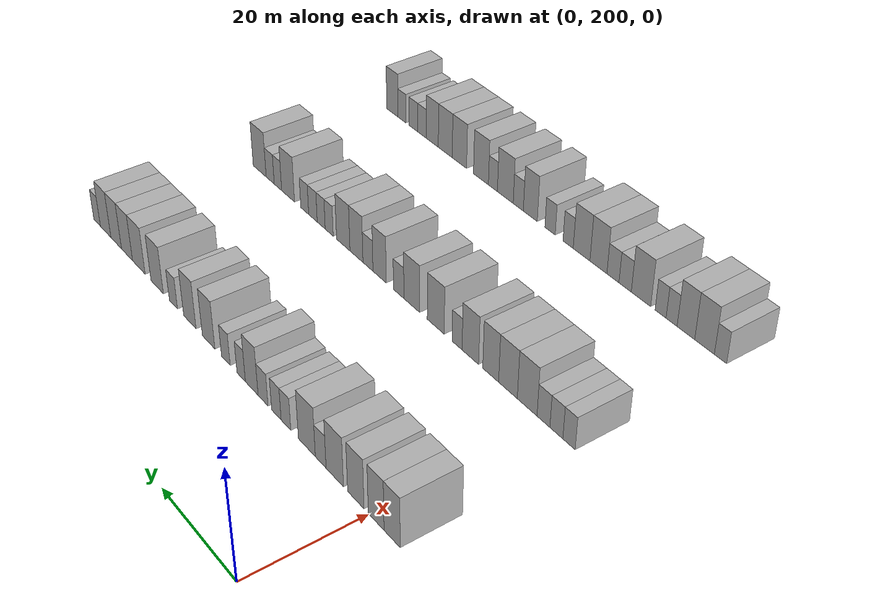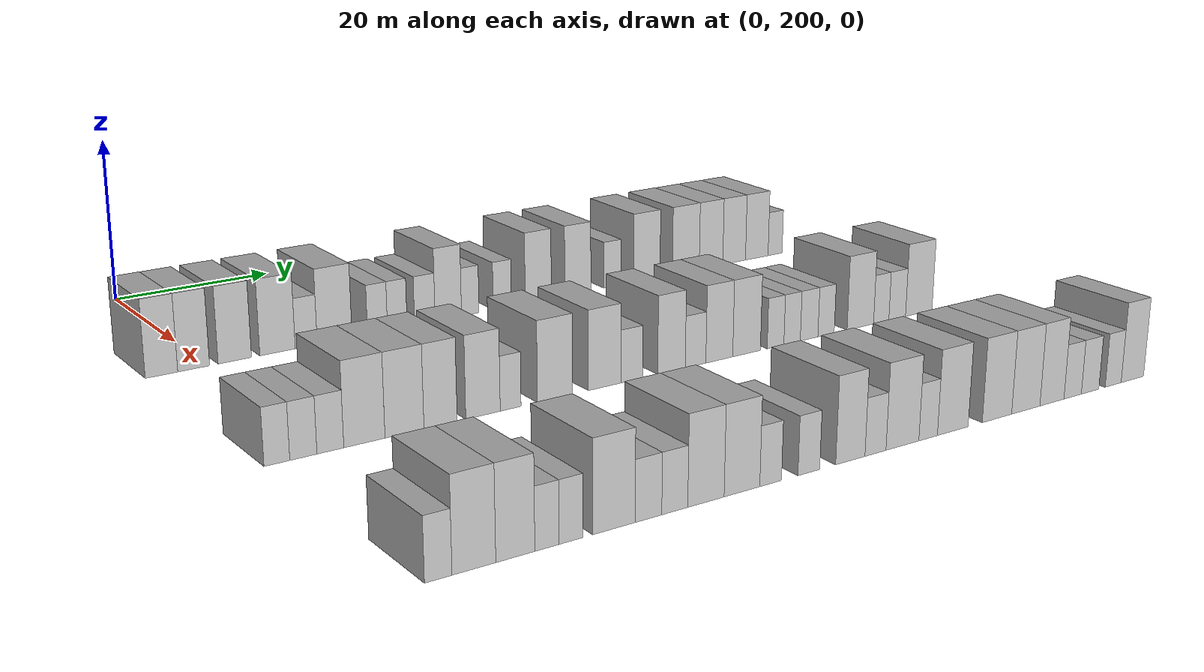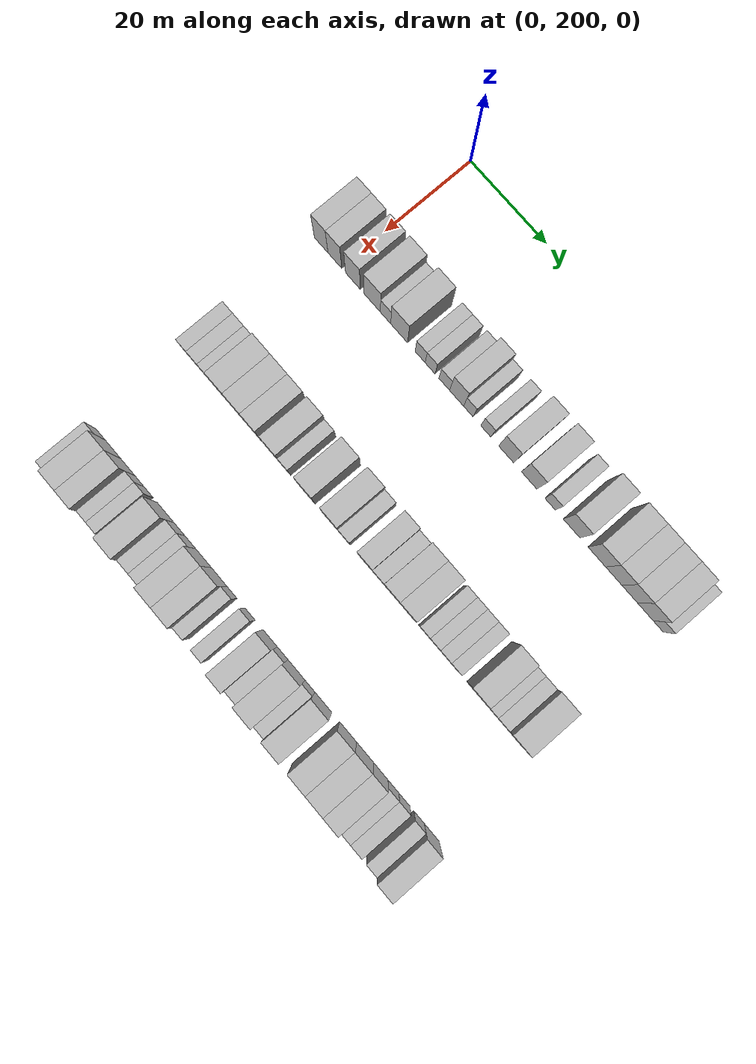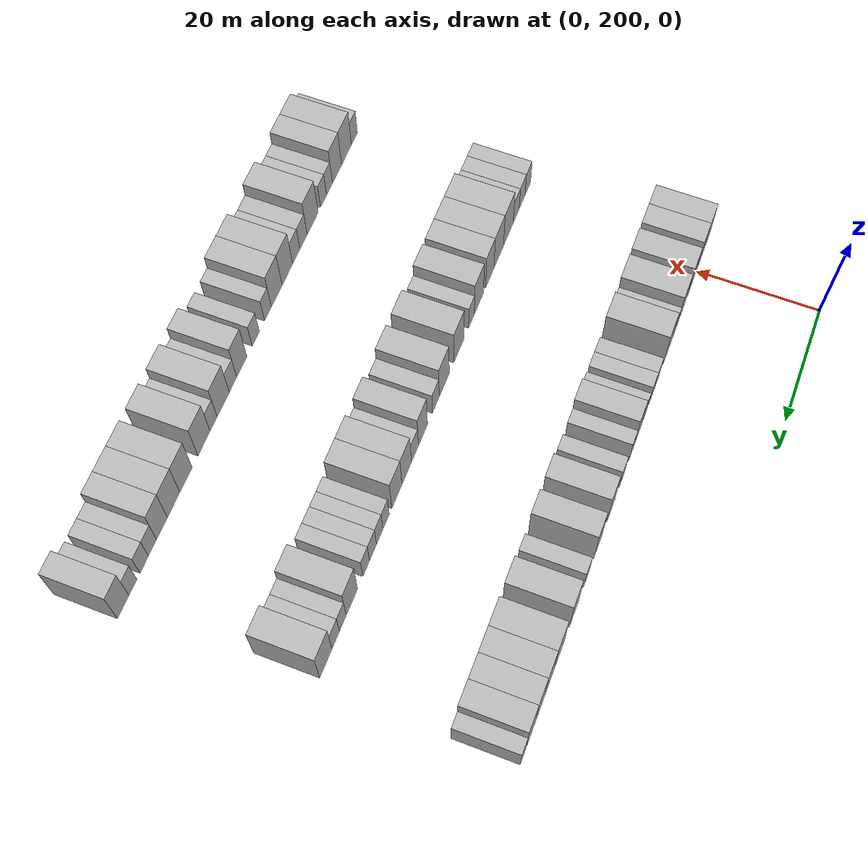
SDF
<sdf version="1.6">
 <world name="default">
  <model name="building_110">
   <static>1</static>
   <pose>25.0000 194.6545 0 0.000000 0.000000 0.000000</pose>
   <link name="link">
    <pose>0 0 4.50 0 0 0</pose>
    <collision name="collision"><geometry><box><size>10.0000 3.6833 9.0000</size></box></geometry></collision>
    <visual name="visual">
     <cast_shadows>0</cast_shadows>
     <geometry><box><size>10.0000 3.6833 9.0000</size></box></geometry>
     <material>
      <script>
       <uri>model://HANNAS_wall/materials/scripts</uri>
       <uri>model://HANNAS_wall/materials/textures</uri>
       <name>vrc/HANNAS_wall</name>
      </script>
     </material>
    </visual>
   </link>
  </model>
  <model name="building_111">
   <static>1</static>
   <pose>25.0000 198.3379 0 0.000000 0.000000 0.000000</pose>
   <link name="link">
    <pose>0 0 4.50 0 0 0</pose>
    <collision name="collision"><geometry><box><size>10.0000 3.6834 9.0000</size></box></geometry></collision>
    <visual name="visual">
     <cast_shadows>0</cast_shadows>
     <geometry><box><size>10.0000 3.6834 9.0000</size></box></geometry>
     <material>
      <script>
       <uri>model://HANNAS_wall/materials/scripts</uri>
       <uri>model://HANNAS_wall/materials/textures</uri>
       <name>vrc/HANNAS_wall</name>
      </script>
     </material>
    </visual>
   </link>
  </model>
  <model name="building_112">
   <static>1</static>
   <pose>25.0000 203.1608 0 0.000000 0.000000 0.000000</pose>
   <link name="link">
    <pose>0 0 4.50 0 0 0</pose>
    <collision name="collision"><geometry><box><size>10.0000 3.9624 9.0000</size></box></geometry></collision>
    <visual name="visual">
     <cast_shadows>0</cast_shadows>
     <geometry><box><size>10.0000 3.9624 9.0000</size></box></geometry>
     <material>
      <script>
       <uri>model://HANNAS_wall/materials/scripts</uri>
       <uri>model://HANNAS_wall/materials/textures</uri>
       <name>vrc/HANNAS_wall</name>
      </script>
     </material>
    </visual>
   </link>
  </model>
  <model name="building_113">
   <static>1</static>
   <pose>25.0000 208.3063 0 0.000000 0.000000 0.000000</pose>
   <link name="link">
    <pose>0 0 4.50 0 0 0</pose>
    <collision name="collision"><geometry><box><size>10.0000 4.3285 9.0000</size></box></geometry></collision>
    <visual name="visual">
     <cast_shadows>0</cast_shadows>
     <geometry><box><size>10.0000 4.3285 9.0000</size></box></geometry>
     <material>
      <script>
       <uri>model://HANNAS_wall/materials/scripts</uri>
       <uri>model://HANNAS_wall/materials/textures</uri>
       <name>vrc/HANNAS_wall</name>
      </script>
     </material>
    </visual>
   </link>
  </model>
  <model name="building_114">
   <static>1</static>
   <pose>25.0000 211.8386 0 0.000000 0.000000 0.000000</pose>
   <link name="link">
    <pose>0 0 3.00 0 0 0</pose>
    <collision name="collision"><geometry><box><size>10.0000 2.7362 6.0000</size></box></geometry></collision>
    <visual name="visual">
     <cast_shadows>0</cast_shadows>
     <geometry><box><size>10.0000 2.7362 6.0000</size></box></geometry>
     <material>
      <script>
       <uri>model://HANNAS_wall/materials/scripts</uri>
       <uri>model://HANNAS_wall/materials/textures</uri>
       <name>vrc/HANNAS_wall</name>
      </script>
     </material>
    </visual>
   </link>
  </model>
  <model name="building_115">
   <static>1</static>
   <pose>25.0000 215.4151 0 0.000000 0.000000 0.000000</pose>
   <link name="link">
    <pose>0 0 4.50 0 0 0</pose>
    <collision name="collision"><geometry><box><size>10.0000 4.4169 9.0000</size></box></geometry></collision>
    <visual name="visual">
     <cast_shadows>0</cast_shadows>
     <geometry><box><size>10.0000 4.4169 9.0000</size></box></geometry>
     <material>
      <script>
       <uri>model://HANNAS_wall/materials/scripts</uri>
       <uri>model://HANNAS_wall/materials/textures</uri>
       <name>vrc/HANNAS_wall</name>
      </script>
     </material>
    </visual>
   </link>
  </model>
  <model name="building_116">
   <static>1</static>
   <pose>25.0000 220.9289 0 0.000000 0.000000 0.000000</pose>
   <link name="link">
    <pose>0 0 3.00 0 0 0</pose>
    <collision name="collision"><geometry><box><size>10.0000 2.6107 6.0000</size></box></geometry></collision>
    <visual name="visual">
     <cast_shadows>0</cast_shadows>
     <geometry><box><size>10.0000 2.6107 6.0000</size></box></geometry>
     <material>
      <script>
       <uri>model://HANNAS_wall/materials/scripts</uri>
       <uri>model://HANNAS_wall/materials/textures</uri>
       <name>vrc/HANNAS_wall</name>
      </script>
     </material>
    </visual>
   </link>
  </model>
  <model name="building_117">
   <static>1</static>
   <pose>25.0000 223.5296 0 0.000000 0.000000 0.000000</pose>
   <link name="link">
    <pose>0 0 3.00 0 0 0</pose>
    <collision name="collision"><geometry><box><size>10.0000 2.5907 6.0000</size></box></geometry></collision>
    <visual name="visual">
     <cast_shadows>0</cast_shadows>
     <geometry><box><size>10.0000 2.5907 6.0000</size></box></geometry>
     <material>
      <script>
       <uri>model://HANNAS_wall/materials/scripts</uri>
       <uri>model://HANNAS_wall/materials/textures</uri>
       <name>vrc/HANNAS_wall</name>
      </script>
     </material>
    </visual>
   </link>
  </model>
  <model name="building_118">
   <static>1</static>
   <pose>25.0000 227.2131 0 0.000000 0.000000 0.000000</pose>
   <link name="link">
    <pose>0 0 3.00 0 0 0</pose>
    <collision name="collision"><geometry><box><size>10.0000 2.7764 6.0000</size></box></geometry></collision>
    <visual name="visual">
     <cast_shadows>0</cast_shadows>
     <geometry><box><size>10.0000 2.7764 6.0000</size></box></geometry>
     <material>
      <script>
       <uri>model://HANNAS_wall/materials/scripts</uri>
       <uri>model://HANNAS_wall/materials/textures</uri>
       <name>vrc/HANNAS_wall</name>
      </script>
     </material>
    </visual>
   </link>
  </model>
  <model name="building_119">
   <static>1</static>
   <pose>25.0000 230.4107 0 0.000000 0.000000 0.000000</pose>
   <link name="link">
    <pose>0 0 4.50 0 0 0</pose>
    <collision name="collision"><geometry><box><size>10.0000 3.6186 9.0000</size></box></geometry></collision>
    <visual name="visual">
     <cast_shadows>0</cast_shadows>
     <geometry><box><size>10.0000 3.6186 9.0000</size></box></geometry>
     <material>
      <script>
       <uri>model://HANNAS_wall/materials/scripts</uri>
       <uri>model://HANNAS_wall/materials/textures</uri>
       <name>vrc/HANNAS_wall</name>
      </script>
     </material>
    </visual>
   </link>
  </model>
  <model name="building_120">
   <static>1</static>
   <pose>25.0000 233.4382 0 0.000000 0.000000 0.000000</pose>
   <link name="link">
    <pose>0 0 3.00 0 0 0</pose>
    <collision name="collision"><geometry><box><size>10.0000 2.4364 6.0000</size></box></geometry></collision>
    <visual name="visual">
     <cast_shadows>0</cast_shadows>
     <geometry><box><size>10.0000 2.4364 6.0000</size></box></geometry>
     <material>
      <script>
       <uri>model://HANNAS_wall/materials/scripts</uri>
       <uri>model://HANNAS_wall/materials/textures</uri>
       <name>vrc/HANNAS_wall</name>
      </script>
     </material>
    </visual>
   </link>
  </model>
  <model name="building_121">
   <static>1</static>
   <pose>25.0000 237.9512 0 0.000000 0.000000 0.000000</pose>
   <link name="link">
    <pose>0 0 3.00 0 0 0</pose>
    <collision name="collision"><geometry><box><size>10.0000 2.5897 6.0000</size></box></geometry></collision>
    <visual name="visual">
     <cast_shadows>0</cast_shadows>
     <geometry><box><size>10.0000 2.5897 6.0000</size></box></geometry>
     <material>
      <script>
       <uri>model://HANNAS_wall/materials/scripts</uri>
       <uri>model://HANNAS_wall/materials/textures</uri>
       <name>vrc/HANNAS_wall</name>
      </script>
     </material>
    </visual>
   </link>
  </model>
  <model name="building_122">
   <static>1</static>
   <pose>25.0000 243.1549 0 0.000000 0.000000 0.000000</pose>
   <link name="link">
    <pose>0 0 4.50 0 0 0</pose>
    <collision name="collision"><geometry><box><size>10.0000 3.8178 9.0000</size></box></geometry></collision>
    <visual name="visual">
     <cast_shadows>0</cast_shadows>
     <geometry><box><size>10.0000 3.8178 9.0000</size></box></geometry>
     <material>
      <script>
       <uri>model://HANNAS_wall/materials/scripts</uri>
       <uri>model://HANNAS_wall/materials/textures</uri>
       <name>vrc/HANNAS_wall</name>
      </script>
     </material>
    </visual>
   </link>
  </model>
  <model name="building_123">
   <static>1</static>
   <pose>25.0000 249.0199 0 0.000000 0.000000 0.000000</pose>
   <link name="link">
    <pose>0 0 4.50 0 0 0</pose>
    <collision name="collision"><geometry><box><size>10.0000 3.9121 9.0000</size></box></geometry></collision>
    <visual name="visual">
     <cast_shadows>0</cast_shadows>
     <geometry><box><size>10.0000 3.9121 9.0000</size></box></geometry>
     <material>
      <script>
       <uri>model://HANNAS_wall/materials/scripts</uri>
       <uri>model://HANNAS_wall/materials/textures</uri>
       <name>vrc/HANNAS_wall</name>
      </script>
     </material>
    </visual>
   </link>
  </model>
  <model name="building_124">
   <static>1</static>
   <pose>25.0000 254.2976 0 0.000000 0.000000 0.000000</pose>
   <link name="link">
    <pose>0 0 3.00 0 0 0</pose>
    <collision name="collision"><geometry><box><size>10.0000 2.6434 6.0000</size></box></geometry></collision>
    <visual name="visual">
     <cast_shadows>0</cast_shadows>
     <geometry><box><size>10.0000 2.6434 6.0000</size></box></geometry>
     <material>
      <script>
       <uri>model://HANNAS_wall/materials/scripts</uri>
       <uri>model://HANNAS_wall/materials/textures</uri>
       <name>vrc/HANNAS_wall</name>
      </script>
     </material>
    </visual>
   </link>
  </model>
  <model name="building_125">
   <static>1</static>
   <pose>25.0000 259.6988 0 0.000000 0.000000 0.000000</pose>
   <link name="link">
    <pose>0 0 4.50 0 0 0</pose>
    <collision name="collision"><geometry><box><size>10.0000 4.1591 9.0000</size></box></geometry></collision>
    <visual name="visual">
     <cast_shadows>0</cast_shadows>
     <geometry><box><size>10.0000 4.1591 9.0000</size></box></geometry>
     <material>
      <script>
       <uri>model://HANNAS_wall/materials/scripts</uri>
       <uri>model://HANNAS_wall/materials/textures</uri>
       <name>vrc/HANNAS_wall</name>
      </script>
     </material>
    </visual>
   </link>
  </model>
  <model name="building_126">
   <static>1</static>
   <pose>25.0000 265.9654 0 0.000000 0.000000 0.000000</pose>
   <link name="link">
    <pose>0 0 4.50 0 0 0</pose>
    <collision name="collision"><geometry><box><size>10.0000 4.3741 9.0000</size></box></geometry></collision>
    <visual name="visual">
     <cast_shadows>0</cast_shadows>
     <geometry><box><size>10.0000 4.3741 9.0000</size></box></geometry>
     <material>
      <script>
       <uri>model://HANNAS_wall/materials/scripts</uri>
       <uri>model://HANNAS_wall/materials/textures</uri>
       <name>vrc/HANNAS_wall</name>
      </script>
     </material>
    </visual>
   </link>
  </model>
  <model name="building_127">
   <static>1</static>
   <pose>25.0000 270.1174 0 0.000000 0.000000 0.000000</pose>
   <link name="link">
    <pose>0 0 4.50 0 0 0</pose>
    <collision name="collision"><geometry><box><size>10.0000 3.9300 9.0000</size></box></geometry></collision>
    <visual name="visual">
     <cast_shadows>0</cast_shadows>
     <geometry><box><size>10.0000 3.9300 9.0000</size></box></geometry>
     <material>
      <script>
       <uri>model://HANNAS_wall/materials/scripts</uri>
       <uri>model://HANNAS_wall/materials/textures</uri>
       <name>vrc/HANNAS_wall</name>
      </script>
     </material>
    </visual>
   </link>
  </model>
  <model name="building_128">
   <static>1</static>
   <pose>25.0000 274.0086 0 0.000000 0.000000 0.000000</pose>
   <link name="link">
    <pose>0 0 4.50 0 0 0</pose>
    <collision name="collision"><geometry><box><size>10.0000 3.8524 9.0000</size></box></geometry></collision>
    <visual name="visual">
     <cast_shadows>0</cast_shadows>
     <geometry><box><size>10.0000 3.8524 9.0000</size></box></geometry>
     <material>
      <script>
       <uri>model://HANNAS_wall/materials/scripts</uri>
       <uri>model://HANNAS_wall/materials/textures</uri>
       <name>vrc/HANNAS_wall</name>
      </script>
     </material>
    </visual>
   </link>
  </model>
  <model name="building_129">
   <static>1</static>
   <pose>25.0000 277.8850 0 0.000000 0.000000 0.000000</pose>
   <link name="link">
    <pose>0 0 4.50 0 0 0</pose>
    <collision name="collision"><geometry><box><size>10.0000 3.9003 9.0000</size></box></geometry></collision>
    <visual name="visual">
     <cast_shadows>0</cast_shadows>
     <geometry><box><size>10.0000 3.9003 9.0000</size></box></geometry>
     <material>
      <script>
       <uri>model://HANNAS_wall/materials/scripts</uri>
       <uri>model://HANNAS_wall/materials/textures</uri>
       <name>vrc/HANNAS_wall</name>
      </script>
     </material>
    </visual>
   </link>
  </model>
  <model name="building_130">
   <static>1</static>
   <pose>25.0000 281.0634 0 0.000000 0.000000 0.000000</pose>
   <link name="link">
    <pose>0 0 3.00 0 0 0</pose>
    <collision name="collision"><geometry><box><size>10.0000 2.4564 6.0000</size></box></geometry></collision>
    <visual name="visual">
     <cast_shadows>0</cast_shadows>
     <geometry><box><size>10.0000 2.4564 6.0000</size></box></geometry>
     <material>
      <script>
       <uri>model://HANNAS_wall/materials/scripts</uri>
       <uri>model://HANNAS_wall/materials/textures</uri>
       <name>vrc/HANNAS_wall</name>
      </script>
     </material>
    </visual>
   </link>
  </model>
  <model name="building_244">
   <static>1</static>
   <pose>55.0000 194.9099 0 0.000000 0.000000 0.000000</pose>
   <link name="link">
    <pose>0 0 3.00 0 0 0</pose>
    <collision name="collision"><geometry><box><size>10.0000 2.6568 6.0000</size></box></geometry></collision>
    <visual name="visual">
     <cast_shadows>0</cast_shadows>
     <geometry><box><size>10.0000 2.6568 6.0000</size></box></geometry>
     <material>
      <script>
       <uri>model://HANNAS_wall/materials/scripts</uri>
       <uri>model://HANNAS_wall/materials/textures</uri>
       <name>vrc/HANNAS_wall</name>
      </script>
     </material>
    </visual>
   </link>
  </model>
  <model name="building_245">
   <static>1</static>
   <pose>55.0000 197.6596 0 0.000000 0.000000 0.000000</pose>
   <link name="link">
    <pose>0 0 3.00 0 0 0</pose>
    <collision name="collision"><geometry><box><size>10.0000 2.8427 6.0000</size></box></geometry></collision>
    <visual name="visual">
     <cast_shadows>0</cast_shadows>
     <geometry><box><size>10.0000 2.8427 6.0000</size></box></geometry>
     <material>
      <script>
       <uri>model://HANNAS_wall/materials/scripts</uri>
       <uri>model://HANNAS_wall/materials/textures</uri>
       <name>vrc/HANNAS_wall</name>
      </script>
     </material>
    </visual>
   </link>
  </model>
  <model name="building_246">
   <static>1</static>
   <pose>55.0000 200.5121 0 0.000000 0.000000 0.000000</pose>
   <link name="link">
    <pose>0 0 3.00 0 0 0</pose>
    <collision name="collision"><geometry><box><size>10.0000 2.8621 6.0000</size></box></geometry></collision>
    <visual name="visual">
     <cast_shadows>0</cast_shadows>
     <geometry><box><size>10.0000 2.8621 6.0000</size></box></geometry>
     <material>
      <script>
       <uri>model://HANNAS_wall/materials/scripts</uri>
       <uri>model://HANNAS_wall/materials/textures</uri>
       <name>vrc/HANNAS_wall</name>
      </script>
     </material>
    </visual>
   </link>
  </model>
  <model name="building_247">
   <static>1</static>
   <pose>55.0000 204.1911 0 0.000000 0.000000 0.000000</pose>
   <link name="link">
    <pose>0 0 4.50 0 0 0</pose>
    <collision name="collision"><geometry><box><size>10.0000 4.4960 9.0000</size></box></geometry></collision>
    <visual name="visual">
     <cast_shadows>0</cast_shadows>
     <geometry><box><size>10.0000 4.4960 9.0000</size></box></geometry>
     <material>
      <script>
       <uri>model://HANNAS_wall/materials/scripts</uri>
       <uri>model://HANNAS_wall/materials/textures</uri>
       <name>vrc/HANNAS_wall</name>
      </script>
     </material>
    </visual>
   </link>
  </model>
  <model name="building_248">
   <static>1</static>
   <pose>55.0000 208.6240 0 0.000000 0.000000 0.000000</pose>
   <link name="link">
    <pose>0 0 4.50 0 0 0</pose>
    <collision name="collision"><geometry><box><size>10.0000 4.3696 9.0000</size></box></geometry></collision>
    <visual name="visual">
     <cast_shadows>0</cast_shadows>
     <geometry><box><size>10.0000 4.3696 9.0000</size></box></geometry>
     <material>
      <script>
       <uri>model://HANNAS_wall/materials/scripts</uri>
       <uri>model://HANNAS_wall/materials/textures</uri>
       <name>vrc/HANNAS_wall</name>
      </script>
     </material>
    </visual>
   </link>
  </model>
  <model name="building_249">
   <static>1</static>
   <pose>55.0000 212.7164 0 0.000000 0.000000 0.000000</pose>
   <link name="link">
    <pose>0 0 4.50 0 0 0</pose>
    <collision name="collision"><geometry><box><size>10.0000 3.8153 9.0000</size></box></geometry></collision>
    <visual name="visual">
     <cast_shadows>0</cast_shadows>
     <geometry><box><size>10.0000 3.8153 9.0000</size></box></geometry>
     <material>
      <script>
       <uri>model://HANNAS_wall/materials/scripts</uri>
       <uri>model://HANNAS_wall/materials/textures</uri>
       <name>vrc/HANNAS_wall</name>
      </script>
     </material>
    </visual>
   </link>
  </model>
  <model name="building_250">
   <static>1</static>
   <pose>55.0000 217.6653 0 0.000000 0.000000 0.000000</pose>
   <link name="link">
    <pose>0 0 4.50 0 0 0</pose>
    <collision name="collision"><geometry><box><size>10.0000 4.0824 9.0000</size></box></geometry></collision>
    <visual name="visual">
     <cast_shadows>0</cast_shadows>
     <geometry><box><size>10.0000 4.0824 9.0000</size></box></geometry>
     <material>
      <script>
       <uri>model://HANNAS_wall/materials/scripts</uri>
       <uri>model://HANNAS_wall/materials/textures</uri>
       <name>vrc/HANNAS_wall</name>
      </script>
     </material>
    </visual>
   </link>
  </model>
  <model name="building_251">
   <static>1</static>
   <pose>55.0000 220.9649 0 0.000000 0.000000 0.000000</pose>
   <link name="link">
    <pose>0 0 3.00 0 0 0</pose>
    <collision name="collision"><geometry><box><size>10.0000 2.5168 6.0000</size></box></geometry></collision>
    <visual name="visual">
     <cast_shadows>0</cast_shadows>
     <geometry><box><size>10.0000 2.5168 6.0000</size></box></geometry>
     <material>
      <script>
       <uri>model://HANNAS_wall/materials/scripts</uri>
       <uri>model://HANNAS_wall/materials/textures</uri>
       <name>vrc/HANNAS_wall</name>
      </script>
     </material>
    </visual>
   </link>
  </model>
  <model name="building_252">
   <static>1</static>
   <pose>55.0000 226.4215 0 0.000000 0.000000 0.000000</pose>
   <link name="link">
    <pose>0 0 4.50 0 0 0</pose>
    <collision name="collision"><geometry><box><size>10.0000 4.3963 9.0000</size></box></geometry></collision>
    <visual name="visual">
     <cast_shadows>0</cast_shadows>
     <geometry><box><size>10.0000 4.3963 9.0000</size></box></geometry>
     <material>
      <script>
       <uri>model://HANNAS_wall/materials/scripts</uri>
       <uri>model://HANNAS_wall/materials/textures</uri>
       <name>vrc/HANNAS_wall</name>
      </script>
     </material>
    </visual>
   </link>
  </model>
  <model name="building_253">
   <static>1</static>
   <pose>55.0000 232.7397 0 0.000000 0.000000 0.000000</pose>
   <link name="link">
    <pose>0 0 4.50 0 0 0</pose>
    <collision name="collision"><geometry><box><size>10.0000 4.2400 9.0000</size></box></geometry></collision>
    <visual name="visual">
     <cast_shadows>0</cast_shadows>
     <geometry><box><size>10.0000 4.2400 9.0000</size></box></geometry>
     <material>
      <script>
       <uri>model://HANNAS_wall/materials/scripts</uri>
       <uri>model://HANNAS_wall/materials/textures</uri>
       <name>vrc/HANNAS_wall</name>
      </script>
     </material>
    </visual>
   </link>
  </model>
  <model name="building_254">
   <static>1</static>
   <pose>55.0000 236.2883 0 0.000000 0.000000 0.000000</pose>
   <link name="link">
    <pose>0 0 3.00 0 0 0</pose>
    <collision name="collision"><geometry><box><size>10.0000 2.8573 6.0000</size></box></geometry></collision>
    <visual name="visual">
     <cast_shadows>0</cast_shadows>
     <geometry><box><size>10.0000 2.8573 6.0000</size></box></geometry>
     <material>
      <script>
       <uri>model://HANNAS_wall/materials/scripts</uri>
       <uri>model://HANNAS_wall/materials/textures</uri>
       <name>vrc/HANNAS_wall</name>
      </script>
     </material>
    </visual>
   </link>
  </model>
  <model name="building_255">
   <static>1</static>
   <pose>55.0000 241.5915 0 0.000000 0.000000 0.000000</pose>
   <link name="link">
    <pose>0 0 4.50 0 0 0</pose>
    <collision name="collision"><geometry><box><size>10.0000 3.7491 9.0000</size></box></geometry></collision>
    <visual name="visual">
     <cast_shadows>0</cast_shadows>
     <geometry><box><size>10.0000 3.7491 9.0000</size></box></geometry>
     <material>
      <script>
       <uri>model://HANNAS_wall/materials/scripts</uri>
       <uri>model://HANNAS_wall/materials/textures</uri>
       <name>vrc/HANNAS_wall</name>
      </script>
     </material>
    </visual>
   </link>
  </model>
  <model name="building_256">
   <static>1</static>
   <pose>55.0000 244.8966 0 0.000000 0.000000 0.000000</pose>
   <link name="link">
    <pose>0 0 3.00 0 0 0</pose>
    <collision name="collision"><geometry><box><size>10.0000 2.8611 6.0000</size></box></geometry></collision>
    <visual name="visual">
     <cast_shadows>0</cast_shadows>
     <geometry><box><size>10.0000 2.8611 6.0000</size></box></geometry>
     <material>
      <script>
       <uri>model://HANNAS_wall/materials/scripts</uri>
       <uri>model://HANNAS_wall/materials/textures</uri>
       <name>vrc/HANNAS_wall</name>
      </script>
     </material>
    </visual>
   </link>
  </model>
  <model name="building_257">
   <static>1</static>
   <pose>55.0000 248.2261 0 0.000000 0.000000 0.000000</pose>
   <link name="link">
    <pose>0 0 4.50 0 0 0</pose>
    <collision name="collision"><geometry><box><size>10.0000 3.7980 9.0000</size></box></geometry></collision>
    <visual name="visual">
     <cast_shadows>0</cast_shadows>
     <geometry><box><size>10.0000 3.7980 9.0000</size></box></geometry>
     <material>
      <script>
       <uri>model://HANNAS_wall/materials/scripts</uri>
       <uri>model://HANNAS_wall/materials/textures</uri>
       <name>vrc/HANNAS_wall</name>
      </script>
     </material>
    </visual>
   </link>
  </model>
  <model name="building_258">
   <static>1</static>
   <pose>55.0000 252.1203 0 0.000000 0.000000 0.000000</pose>
   <link name="link">
    <pose>0 0 4.50 0 0 0</pose>
    <collision name="collision"><geometry><box><size>10.0000 3.9904 9.0000</size></box></geometry></collision>
    <visual name="visual">
     <cast_shadows>0</cast_shadows>
     <geometry><box><size>10.0000 3.9904 9.0000</size></box></geometry>
     <material>
      <script>
       <uri>model://HANNAS_wall/materials/scripts</uri>
       <uri>model://HANNAS_wall/materials/textures</uri>
       <name>vrc/HANNAS_wall</name>
      </script>
     </material>
    </visual>
   </link>
  </model>
  <model name="building_259">
   <static>1</static>
   <pose>55.0000 256.3441 0 0.000000 0.000000 0.000000</pose>
   <link name="link">
    <pose>0 0 3.00 0 0 0</pose>
    <collision name="collision"><geometry><box><size>10.0000 2.4571 6.0000</size></box></geometry></collision>
    <visual name="visual">
     <cast_shadows>0</cast_shadows>
     <geometry><box><size>10.0000 2.4571 6.0000</size></box></geometry>
     <material>
      <script>
       <uri>model://HANNAS_wall/materials/scripts</uri>
       <uri>model://HANNAS_wall/materials/textures</uri>
       <name>vrc/HANNAS_wall</name>
      </script>
     </material>
    </visual>
   </link>
  </model>
  <model name="building_260">
   <static>1</static>
   <pose>55.0000 258.8035 0 0.000000 0.000000 0.000000</pose>
   <link name="link">
    <pose>0 0 3.00 0 0 0</pose>
    <collision name="collision"><geometry><box><size>10.0000 2.4618 6.0000</size></box></geometry></collision>
    <visual name="visual">
     <cast_shadows>0</cast_shadows>
     <geometry><box><size>10.0000 2.4618 6.0000</size></box></geometry>
     <material>
      <script>
       <uri>model://HANNAS_wall/materials/scripts</uri>
       <uri>model://HANNAS_wall/materials/textures</uri>
       <name>vrc/HANNAS_wall</name>
      </script>
     </material>
    </visual>
   </link>
  </model>
  <model name="building_261">
   <static>1</static>
   <pose>55.0000 261.3686 0 0.000000 0.000000 0.000000</pose>
   <link name="link">
    <pose>0 0 3.00 0 0 0</pose>
    <collision name="collision"><geometry><box><size>10.0000 2.6683 6.0000</size></box></geometry></collision>
    <visual name="visual">
     <cast_shadows>0</cast_shadows>
     <geometry><box><size>10.0000 2.6683 6.0000</size></box></geometry>
     <material>
      <script>
       <uri>model://HANNAS_wall/materials/scripts</uri>
       <uri>model://HANNAS_wall/materials/textures</uri>
       <name>vrc/HANNAS_wall</name>
      </script>
     </material>
    </visual>
   </link>
  </model>
  <model name="building_262">
   <static>1</static>
   <pose>55.0000 263.9572 0 0.000000 0.000000 0.000000</pose>
   <link name="link">
    <pose>0 0 3.00 0 0 0</pose>
    <collision name="collision"><geometry><box><size>10.0000 2.5091 6.0000</size></box></geometry></collision>
    <visual name="visual">
     <cast_shadows>0</cast_shadows>
     <geometry><box><size>10.0000 2.5091 6.0000</size></box></geometry>
     <material>
      <script>
       <uri>model://HANNAS_wall/materials/scripts</uri>
       <uri>model://HANNAS_wall/materials/textures</uri>
       <name>vrc/HANNAS_wall</name>
      </script>
     </material>
    </visual>
   </link>
  </model>
  <model name="building_263">
   <static>1</static>
   <pose>55.0000 269.3064 0 0.000000 0.000000 0.000000</pose>
   <link name="link">
    <pose>0 0 4.50 0 0 0</pose>
    <collision name="collision"><geometry><box><size>10.0000 4.1894 9.0000</size></box></geometry></collision>
    <visual name="visual">
     <cast_shadows>0</cast_shadows>
     <geometry><box><size>10.0000 4.1894 9.0000</size></box></geometry>
     <material>
      <script>
       <uri>model://HANNAS_wall/materials/scripts</uri>
       <uri>model://HANNAS_wall/materials/textures</uri>
       <name>vrc/HANNAS_wall</name>
      </script>
     </material>
    </visual>
   </link>
  </model>
  <model name="building_264">
   <static>1</static>
   <pose>55.0000 272.6319 0 0.000000 0.000000 0.000000</pose>
   <link name="link">
    <pose>0 0 3.00 0 0 0</pose>
    <collision name="collision"><geometry><box><size>10.0000 2.4616 6.0000</size></box></geometry></collision>
    <visual name="visual">
     <cast_shadows>0</cast_shadows>
     <geometry><box><size>10.0000 2.4616 6.0000</size></box></geometry>
     <material>
      <script>
       <uri>model://HANNAS_wall/materials/scripts</uri>
       <uri>model://HANNAS_wall/materials/textures</uri>
       <name>vrc/HANNAS_wall</name>
      </script>
     </material>
    </visual>
   </link>
  </model>
  <model name="building_265">
   <static>1</static>
   <pose>55.0000 275.2203 0 0.000000 0.000000 0.000000</pose>
   <link name="link">
    <pose>0 0 3.00 0 0 0</pose>
    <collision name="collision"><geometry><box><size>10.0000 2.7151 6.0000</size></box></geometry></collision>
    <visual name="visual">
     <cast_shadows>0</cast_shadows>
     <geometry><box><size>10.0000 2.7151 6.0000</size></box></geometry>
     <material>
      <script>
       <uri>model://HANNAS_wall/materials/scripts</uri>
       <uri>model://HANNAS_wall/materials/textures</uri>
       <name>vrc/HANNAS_wall</name>
      </script>
     </material>
    </visual>
   </link>
  </model>
  <model name="building_266">
   <static>1</static>
   <pose>55.0000 278.7724 0 0.000000 0.000000 0.000000</pose>
   <link name="link">
    <pose>0 0 4.50 0 0 0</pose>
    <collision name="collision"><geometry><box><size>10.0000 4.3890 9.0000</size></box></geometry></collision>
    <visual name="visual">
     <cast_shadows>0</cast_shadows>
     <geometry><box><size>10.0000 4.3890 9.0000</size></box></geometry>
     <material>
      <script>
       <uri>model://HANNAS_wall/materials/scripts</uri>
       <uri>model://HANNAS_wall/materials/textures</uri>
       <name>vrc/HANNAS_wall</name>
      </script>
     </material>
    </visual>
   </link>
  </model>
  <model name="building_388">
   <static>1</static>
   <pose>85.0000 195.8535 0 0.000000 0.000000 0.000000</pose>
   <link name="link">
    <pose>0 0 3.00 0 0 0</pose>
    <collision name="collision"><geometry><box><size>10.0000 2.5774 6.0000</size></box></geometry></collision>
    <visual name="visual">
     <cast_shadows>0</cast_shadows>
     <geometry><box><size>10.0000 2.5774 6.0000</size></box></geometry>
     <material>
      <script>
       <uri>model://HANNAS_wall/materials/scripts</uri>
       <uri>model://HANNAS_wall/materials/textures</uri>
       <name>vrc/HANNAS_wall</name>
      </script>
     </material>
    </visual>
   </link>
  </model>
  <model name="building_389">
   <static>1</static>
   <pose>85.0000 199.2350 0 0.000000 0.000000 0.000000</pose>
   <link name="link">
    <pose>0 0 4.50 0 0 0</pose>
    <collision name="collision"><geometry><box><size>10.0000 4.1856 9.0000</size></box></geometry></collision>
    <visual name="visual">
     <cast_shadows>0</cast_shadows>
     <geometry><box><size>10.0000 4.1856 9.0000</size></box></geometry>
     <material>
      <script>
       <uri>model://HANNAS_wall/materials/scripts</uri>
       <uri>model://HANNAS_wall/materials/textures</uri>
       <name>vrc/HANNAS_wall</name>
      </script>
     </material>
    </visual>
   </link>
  </model>
  <model name="building_390">
   <static>1</static>
   <pose>85.0000 203.2521 0 0.000000 0.000000 0.000000</pose>
   <link name="link">
    <pose>0 0 4.50 0 0 0</pose>
    <collision name="collision"><geometry><box><size>10.0000 3.8487 9.0000</size></box></geometry></collision>
    <visual name="visual">
     <cast_shadows>0</cast_shadows>
     <geometry><box><size>10.0000 3.8487 9.0000</size></box></geometry>
     <material>
      <script>
       <uri>model://HANNAS_wall/materials/scripts</uri>
       <uri>model://HANNAS_wall/materials/textures</uri>
       <name>vrc/HANNAS_wall</name>
      </script>
     </material>
    </visual>
   </link>
  </model>
  <model name="building_391">
   <static>1</static>
   <pose>85.0000 206.3986 0 0.000000 0.000000 0.000000</pose>
   <link name="link">
    <pose>0 0 3.00 0 0 0</pose>
    <collision name="collision"><geometry><box><size>10.0000 2.4444 6.0000</size></box></geometry></collision>
    <visual name="visual">
     <cast_shadows>0</cast_shadows>
     <geometry><box><size>10.0000 2.4444 6.0000</size></box></geometry>
     <material>
      <script>
       <uri>model://HANNAS_wall/materials/scripts</uri>
       <uri>model://HANNAS_wall/materials/textures</uri>
       <name>vrc/HANNAS_wall</name>
      </script>
     </material>
    </visual>
   </link>
  </model>
  <model name="building_392">
   <static>1</static>
   <pose>85.0000 208.8551 0 0.000000 0.000000 0.000000</pose>
   <link name="link">
    <pose>0 0 3.00 0 0 0</pose>
    <collision name="collision"><geometry><box><size>10.0000 2.4685 6.0000</size></box></geometry></collision>
    <visual name="visual">
     <cast_shadows>0</cast_shadows>
     <geometry><box><size>10.0000 2.4685 6.0000</size></box></geometry>
     <material>
      <script>
       <uri>model://HANNAS_wall/materials/scripts</uri>
       <uri>model://HANNAS_wall/materials/textures</uri>
       <name>vrc/HANNAS_wall</name>
      </script>
     </material>
    </visual>
   </link>
  </model>
  <model name="building_393">
   <static>1</static>
   <pose>85.0000 213.3313 0 0.000000 0.000000 0.000000</pose>
   <link name="link">
    <pose>0 0 4.50 0 0 0</pose>
    <collision name="collision"><geometry><box><size>10.0000 4.4841 9.0000</size></box></geometry></collision>
    <visual name="visual">
     <cast_shadows>0</cast_shadows>
     <geometry><box><size>10.0000 4.4841 9.0000</size></box></geometry>
     <material>
      <script>
       <uri>model://HANNAS_wall/materials/scripts</uri>
       <uri>model://HANNAS_wall/materials/textures</uri>
       <name>vrc/HANNAS_wall</name>
      </script>
     </material>
    </visual>
   </link>
  </model>
  <model name="building_394">
   <static>1</static>
   <pose>85.0000 217.0243 0 0.000000 0.000000 0.000000</pose>
   <link name="link">
    <pose>0 0 3.00 0 0 0</pose>
    <collision name="collision"><geometry><box><size>10.0000 2.9020 6.0000</size></box></geometry></collision>
    <visual name="visual">
     <cast_shadows>0</cast_shadows>
     <geometry><box><size>10.0000 2.9020 6.0000</size></box></geometry>
     <material>
      <script>
       <uri>model://HANNAS_wall/materials/scripts</uri>
       <uri>model://HANNAS_wall/materials/textures</uri>
       <name>vrc/HANNAS_wall</name>
      </script>
     </material>
    </visual>
   </link>
  </model>
  <model name="building_395">
   <static>1</static>
   <pose>85.0000 219.9163 0 0.000000 0.000000 0.000000</pose>
   <link name="link">
    <pose>0 0 3.00 0 0 0</pose>
    <collision name="collision"><geometry><box><size>10.0000 2.8819 6.0000</size></box></geometry></collision>
    <visual name="visual">
     <cast_shadows>0</cast_shadows>
     <geometry><box><size>10.0000 2.8819 6.0000</size></box></geometry>
     <material>
      <script>
       <uri>model://HANNAS_wall/materials/scripts</uri>
       <uri>model://HANNAS_wall/materials/textures</uri>
       <name>vrc/HANNAS_wall</name>
      </script>
     </material>
    </visual>
   </link>
  </model>
  <model name="building_396">
   <static>1</static>
   <pose>85.0000 223.4248 0 0.000000 0.000000 0.000000</pose>
   <link name="link">
    <pose>0 0 4.50 0 0 0</pose>
    <collision name="collision"><geometry><box><size>10.0000 4.1350 9.0000</size></box></geometry></collision>
    <visual name="visual">
     <cast_shadows>0</cast_shadows>
     <geometry><box><size>10.0000 4.1350 9.0000</size></box></geometry>
     <material>
      <script>
       <uri>model://HANNAS_wall/materials/scripts</uri>
       <uri>model://HANNAS_wall/materials/textures</uri>
       <name>vrc/HANNAS_wall</name>
      </script>
     </material>
    </visual>
   </link>
  </model>
  <model name="building_397">
   <static>1</static>
   <pose>85.0000 227.5767 0 0.000000 0.000000 0.000000</pose>
   <link name="link">
    <pose>0 0 4.50 0 0 0</pose>
    <collision name="collision"><geometry><box><size>10.0000 4.1689 9.0000</size></box></geometry></collision>
    <visual name="visual">
     <cast_shadows>0</cast_shadows>
     <geometry><box><size>10.0000 4.1689 9.0000</size></box></geometry>
     <material>
      <script>
       <uri>model://HANNAS_wall/materials/scripts</uri>
       <uri>model://HANNAS_wall/materials/textures</uri>
       <name>vrc/HANNAS_wall</name>
      </script>
     </material>
    </visual>
   </link>
  </model>
  <model name="building_398">
   <static>1</static>
   <pose>85.0000 230.9576 0 0.000000 0.000000 0.000000</pose>
   <link name="link">
    <pose>0 0 3.00 0 0 0</pose>
    <collision name="collision"><geometry><box><size>10.0000 2.5929 6.0000</size></box></geometry></collision>
    <visual name="visual">
     <cast_shadows>0</cast_shadows>
     <geometry><box><size>10.0000 2.5929 6.0000</size></box></geometry>
     <material>
      <script>
       <uri>model://HANNAS_wall/materials/scripts</uri>
       <uri>model://HANNAS_wall/materials/textures</uri>
       <name>vrc/HANNAS_wall</name>
      </script>
     </material>
    </visual>
   </link>
  </model>
  <model name="building_399">
   <static>1</static>
   <pose>85.0000 235.5948 0 0.000000 0.000000 0.000000</pose>
   <link name="link">
    <pose>0 0 3.00 0 0 0</pose>
    <collision name="collision"><geometry><box><size>10.0000 2.6815 6.0000</size></box></geometry></collision>
    <visual name="visual">
     <cast_shadows>0</cast_shadows>
     <geometry><box><size>10.0000 2.6815 6.0000</size></box></geometry>
     <material>
      <script>
       <uri>model://HANNAS_wall/materials/scripts</uri>
       <uri>model://HANNAS_wall/materials/textures</uri>
       <name>vrc/HANNAS_wall</name>
      </script>
     </material>
    </visual>
   </link>
  </model>
  <model name="building_400">
   <static>1</static>
   <pose>85.0000 240.8009 0 0.000000 0.000000 0.000000</pose>
   <link name="link">
    <pose>0 0 4.50 0 0 0</pose>
    <collision name="collision"><geometry><box><size>10.0000 3.7307 9.0000</size></box></geometry></collision>
    <visual name="visual">
     <cast_shadows>0</cast_shadows>
     <geometry><box><size>10.0000 3.7307 9.0000</size></box></geometry>
     <material>
      <script>
       <uri>model://HANNAS_wall/materials/scripts</uri>
       <uri>model://HANNAS_wall/materials/textures</uri>
       <name>vrc/HANNAS_wall</name>
      </script>
     </material>
    </visual>
   </link>
  </model>
  <model name="building_401">
   <static>1</static>
   <pose>85.0000 244.0358 0 0.000000 0.000000 0.000000</pose>
   <link name="link">
    <pose>0 0 3.00 0 0 0</pose>
    <collision name="collision"><geometry><box><size>10.0000 2.7390 6.0000</size></box></geometry></collision>
    <visual name="visual">
     <cast_shadows>0</cast_shadows>
     <geometry><box><size>10.0000 2.7390 6.0000</size></box></geometry>
     <material>
      <script>
       <uri>model://HANNAS_wall/materials/scripts</uri>
       <uri>model://HANNAS_wall/materials/textures</uri>
       <name>vrc/HANNAS_wall</name>
      </script>
     </material>
    </visual>
   </link>
  </model>
  <model name="building_402">
   <static>1</static>
   <pose>85.0000 247.5933 0 0.000000 0.000000 0.000000</pose>
   <link name="link">
    <pose>0 0 4.50 0 0 0</pose>
    <collision name="collision"><geometry><box><size>10.0000 4.3760 9.0000</size></box></geometry></collision>
    <visual name="visual">
     <cast_shadows>0</cast_shadows>
     <geometry><box><size>10.0000 4.3760 9.0000</size></box></geometry>
     <material>
      <script>
       <uri>model://HANNAS_wall/materials/scripts</uri>
       <uri>model://HANNAS_wall/materials/textures</uri>
       <name>vrc/HANNAS_wall</name>
      </script>
     </material>
    </visual>
   </link>
  </model>
  <model name="building_403">
   <static>1</static>
   <pose>85.0000 251.0441 0 0.000000 0.000000 0.000000</pose>
   <link name="link">
    <pose>0 0 3.00 0 0 0</pose>
    <collision name="collision"><geometry><box><size>10.0000 2.5255 6.0000</size></box></geometry></collision>
    <visual name="visual">
     <cast_shadows>0</cast_shadows>
     <geometry><box><size>10.0000 2.5255 6.0000</size></box></geometry>
     <material>
      <script>
       <uri>model://HANNAS_wall/materials/scripts</uri>
       <uri>model://HANNAS_wall/materials/textures</uri>
       <name>vrc/HANNAS_wall</name>
      </script>
     </material>
    </visual>
   </link>
  </model>
  <model name="building_404">
   <static>1</static>
   <pose>85.0000 254.4404 0 0.000000 0.000000 0.000000</pose>
   <link name="link">
    <pose>0 0 4.50 0 0 0</pose>
    <collision name="collision"><geometry><box><size>10.0000 4.2672 9.0000</size></box></geometry></collision>
    <visual name="visual">
     <cast_shadows>0</cast_shadows>
     <geometry><box><size>10.0000 4.2672 9.0000</size></box></geometry>
     <material>
      <script>
       <uri>model://HANNAS_wall/materials/scripts</uri>
       <uri>model://HANNAS_wall/materials/textures</uri>
       <name>vrc/HANNAS_wall</name>
      </script>
     </material>
    </visual>
   </link>
  </model>
  <model name="building_405">
   <static>1</static>
   <pose>85.0000 260.6949 0 0.000000 0.000000 0.000000</pose>
   <link name="link">
    <pose>0 0 4.50 0 0 0</pose>
    <collision name="collision"><geometry><box><size>10.0000 4.2418 9.0000</size></box></geometry></collision>
    <visual name="visual">
     <cast_shadows>0</cast_shadows>
     <geometry><box><size>10.0000 4.2418 9.0000</size></box></geometry>
     <material>
      <script>
       <uri>model://HANNAS_wall/materials/scripts</uri>
       <uri>model://HANNAS_wall/materials/textures</uri>
       <name>vrc/HANNAS_wall</name>
      </script>
     </material>
    </visual>
   </link>
  </model>
  <model name="building_406">
   <static>1</static>
   <pose>85.0000 264.9086 0 0.000000 0.000000 0.000000</pose>
   <link name="link">
    <pose>0 0 4.50 0 0 0</pose>
    <collision name="collision"><geometry><box><size>10.0000 4.1856 9.0000</size></box></geometry></collision>
    <visual name="visual">
     <cast_shadows>0</cast_shadows>
     <geometry><box><size>10.0000 4.1856 9.0000</size></box></geometry>
     <material>
      <script>
       <uri>model://HANNAS_wall/materials/scripts</uri>
       <uri>model://HANNAS_wall/materials/textures</uri>
       <name>vrc/HANNAS_wall</name>
      </script>
     </material>
    </visual>
   </link>
  </model>
  <model name="building_407">
   <static>1</static>
   <pose>85.0000 268.8246 0 0.000000 0.000000 0.000000</pose>
   <link name="link">
    <pose>0 0 4.50 0 0 0</pose>
    <collision name="collision"><geometry><box><size>10.0000 3.6465 9.0000</size></box></geometry></collision>
    <visual name="visual">
     <cast_shadows>0</cast_shadows>
     <geometry><box><size>10.0000 3.6465 9.0000</size></box></geometry>
     <material>
      <script>
       <uri>model://HANNAS_wall/materials/scripts</uri>
       <uri>model://HANNAS_wall/materials/textures</uri>
       <name>vrc/HANNAS_wall</name>
      </script>
     </material>
    </visual>
   </link>
  </model>
  <model name="building_408">
   <static>1</static>
   <pose>85.0000 271.9906 0 0.000000 0.000000 0.000000</pose>
   <link name="link">
    <pose>0 0 3.00 0 0 0</pose>
    <collision name="collision"><geometry><box><size>10.0000 2.6854 6.0000</size></box></geometry></collision>
    <visual name="visual">
     <cast_shadows>0</cast_shadows>
     <geometry><box><size>10.0000 2.6854 6.0000</size></box></geometry>
     <material>
      <script>
       <uri>model://HANNAS_wall/materials/scripts</uri>
       <uri>model://HANNAS_wall/materials/textures</uri>
       <name>vrc/HANNAS_wall</name>
      </script>
     </material>
    </visual>
   </link>
  </model>
  <model name="building_409">
   <static>1</static>
   <pose>85.0000 274.7044 0 0.000000 0.000000 0.000000</pose>
   <link name="link">
    <pose>0 0 3.00 0 0 0</pose>
    <collision name="collision"><geometry><box><size>10.0000 2.7423 6.0000</size></box></geometry></collision>
    <visual name="visual">
     <cast_shadows>0</cast_shadows>
     <geometry><box><size>10.0000 2.7423 6.0000</size></box></geometry>
     <material>
      <script>
       <uri>model://HANNAS_wall/materials/scripts</uri>
       <uri>model://HANNAS_wall/materials/textures</uri>
       <name>vrc/HANNAS_wall</name>
      </script>
     </material>
    </visual>
   </link>
  </model>
  <model name="building_410">
   <static>1</static>
   <pose>85.0000 278.3530 0 0.000000 0.000000 0.000000</pose>
   <link name="link">
    <pose>0 0 3.00 0 0 0</pose>
    <collision name="collision"><geometry><box><size>10.0000 2.5549 6.0000</size></box></geometry></collision>
    <visual name="visual">
     <cast_shadows>0</cast_shadows>
     <geometry><box><size>10.0000 2.5549 6.0000</size></box></geometry>
     <material>
      <script>
       <uri>model://HANNAS_wall/materials/scripts</uri>
       <uri>model://HANNAS_wall/materials/textures</uri>
       <name>vrc/HANNAS_wall</name>
      </script>
     </material>
    </visual>
   </link>
  </model>
  <model name="building_411">
   <static>1</static>
   <pose>85.0000 281.4534 0 0.000000 0.000000 0.000000</pose>
   <link name="link">
    <pose>0 0 4.50 0 0 0</pose>
    <collision name="collision"><geometry><box><size>10.0000 3.6459 9.0000</size></box></geometry></collision>
    <visual name="visual">
     <cast_shadows>0</cast_shadows>
     <geometry><box><size>10.0000 3.6459 9.0000</size></box></geometry>
     <material>
      <script>
       <uri>model://HANNAS_wall/materials/scripts</uri>
       <uri>model://HANNAS_wall/materials/textures</uri>
       <name>vrc/HANNAS_wall</name>
      </script>
     </material>
    </visual>
   </link>
  </model>
 </world>
</sdf>
